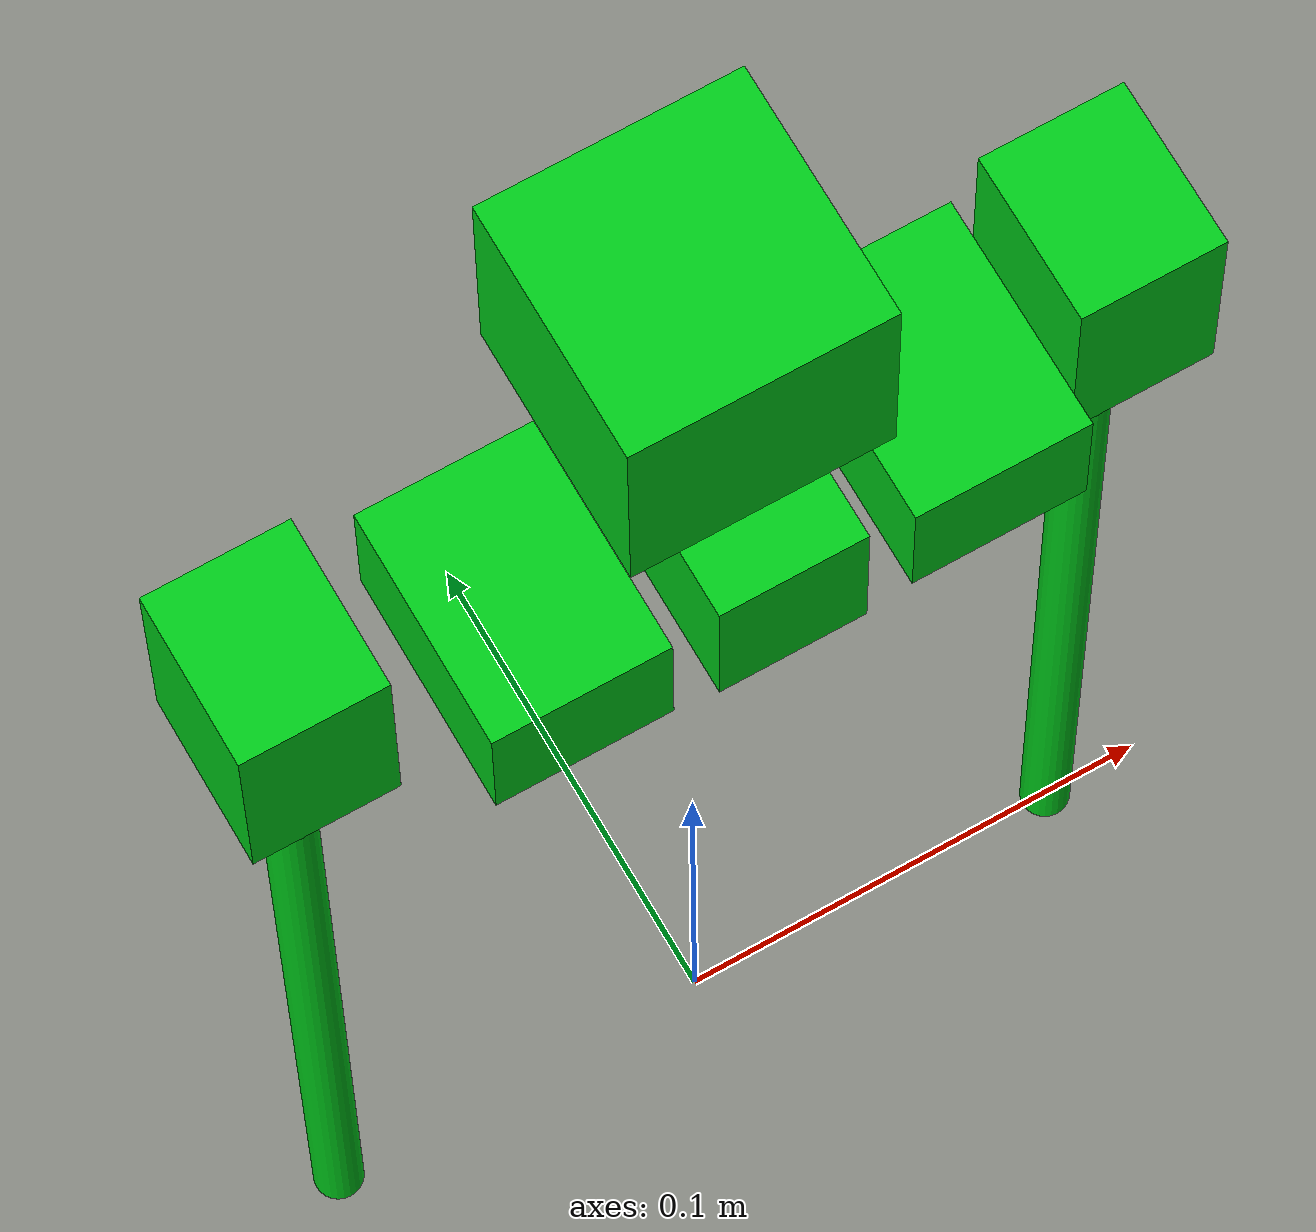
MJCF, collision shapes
<mujoco model="chopstick_bot">
  <default>
    <default class="robot">
      <default class="motor">
        <joint />
        <motor />
        </default>
      <default class="visual">
        <geom material="visualgeom" contype="0" conaffinity="0" group="2" />
        </default>
      <default class="collision">
        <geom material="collision_material" condim="3" contype="0" conaffinity="1" priority="1" group="1" solref="0.005 1" solimp="0.99 0.999 1e-05" friction="1 0.01 0.01" />
        </default>
      </default>
    </default>
  <compiler angle="radian" />
  <asset>
    <material name="motor_gray" rgba="0.89804 0.91765 0.92941 1.0" />
    <material name="default_material" rgba="0.7 0.7 0.7 1" />
    <material name="collision_material" rgba="0.0 0.8 0.1 1.0" />
    <mesh name="XL-430_new_coordinate_on_axis.STL" file="/media/hrc/T7_UBUNTU_ONLY/Codesign_ChopstickBot_all_files/reference/xm430_motor/good_conversion_stl/XL-430_new_coordinate_on_axis.STL" scale="0.001000 0.001000 0.001000" />
    </asset>
  <worldbody>
    <body name="base_motor_link" pos="0.00000000 0.00000000 0.26999999" quat="1 0 0 0" childclass="robot">
      <freejoint name="floating_base" />
      <geom name="base_motor_link_collision" pos="0.000000 -0.012000 0.000000" quat="1.0 0.0 0.0 0.0" type="box" size="0.01425 0.02325 0.017" class="collision" />
      <geom name="base_motor_link_visual" pos="0.000000 0.000000 0.000000" quat="1.0 0.0 0.0 0.0" material="motor_gray" type="mesh" mesh="XL-430_new_coordinate_on_axis.STL" class="visual" />
      <body name="l_hip_pitch_mount" pos="-0.040000 0.000000 0.000000" quat="0.7071068967259818 0.0 -0.7071066656470943 0.0">
        <inertial pos="0.000000 0.000000 0.000000" quat="1.0 0.0 0.0 0.0" mass="0.001000" diaginertia="2e-08 2e-08 2e-08" />
        <body name="l_hip_pitch" pos="0.000000 0.000000 0.000000" quat="1.0 0.0 0.0 0.0">
          <inertial pos="0.000000 -0.012000 0.000000" quat="1.0 0.0 0.0 0.0" mass="0.065000" diaginertia="1.797e-05 1.066e-05 1.611e-05" />
          <geom name="l_hip_pitch_collision" pos="0.000000 -0.012000 0.000000" quat="1.0 0.0 0.0 0.0" type="box" size="0.01425 0.02325 0.017" class="collision" />
          <geom name="l_hip_pitch_visual" pos="0.000000 0.000000 0.000000" quat="1.0 0.0 0.0 0.0" material="motor_gray" type="mesh" mesh="XL-430_new_coordinate_on_axis.STL" class="visual" />
          <body name="l_hip_pitch_joint_frame" pos="0.000000 0.000000 0.040000" quat="1.0 0.0 0.0 0.0">
            <joint name="l_hip_pitch_joint" type="hinge" ref="0.0" class="motor" range="-1.57 1.57" axis="0.000000 0.000000 1.000000" />
            <site name="l_hip_pitch_joint_site" pos="0 0 0" quat="1 0 0 0" />
            <inertial pos="0.000000 0.000000 0.000000" quat="1.0 0.0 0.0 0.0" mass="0.001000" diaginertia="2e-08 2e-08 2e-08" />
            <body name="l_hip_roll" pos="0.000000 0.000000 0.000000" quat="0.5000001633974483 -0.49999983660255165 -0.4999999999999733 -0.4999999999999733">
              <inertial pos="0.000000 -0.012000 0.000000" quat="1.0 0.0 0.0 0.0" mass="0.065000" diaginertia="1.797e-05 1.066e-05 1.611e-05" />
              <geom name="l_hip_roll_collision" pos="0.000000 -0.012000 0.000000" quat="1.0 0.0 0.0 0.0" type="box" size="0.01425 0.02325 0.017" class="collision" />
              <geom name="l_hip_roll_visual" pos="0.000000 0.000000 0.000000" quat="1.0 0.0 0.0 0.0" material="motor_gray" type="mesh" mesh="XL-430_new_coordinate_on_axis.STL" class="visual" />
              <body name="l_leg_bar" pos="0.000000 -0.000000 0.000000" quat="1.0 0.0 0.0 0.0">
                <joint name="l_hip_roll_joint" type="hinge" ref="0.0" class="motor" range="-1.57 1.57" axis="0.000000 0.000000 1.000000" />
                <site name="l_hip_roll_joint_site" pos="0 0 0" quat="1 0 0 0" />
                <inertial pos="0.000000 0.000000 0.000000" quat="1.0 0.0 0.0 0.0" mass="0.030000" diaginertia="0.00010019 0.00010019 3.7e-07" />
                <geom name="l_leg_bar_collision" pos="0.000000 -0.170000 0.000000" quat="0.7071068967259818 0.7071066656470943 0.0 0.0" type="cylinder" size="0.005000 0.1" class="collision" />
                <geom name="l_leg_bar_visual" pos="0.000000 -0.170000 0.000000" quat="0.7071068967259818 0.7071066656470943 0.0 0.0" material="motor_gray" type="cylinder" size="0.005000 0.1" class="visual" />
                </body>
              </body>
            </body>
          </body>
        </body>
      <body name="r_hip_pitch_mount" pos="0.040000 0.000000 0.000000" quat="0.7071068967259818 0.0 0.7071066656470943 -0.0">
        <inertial pos="0.000000 0.000000 0.000000" quat="1.0 0.0 0.0 0.0" mass="0.001000" diaginertia="2e-08 2e-08 2e-08" />
        <body name="r_hip_pitch" pos="0.000000 0.000000 0.000000" quat="1.0 0.0 0.0 0.0">
          <inertial pos="0.000000 -0.012000 0.000000" quat="1.0 0.0 0.0 0.0" mass="0.065000" diaginertia="1.797e-05 1.066e-05 1.611e-05" />
          <geom name="r_hip_pitch_collision" pos="0.000000 -0.012000 0.000000" quat="1.0 0.0 0.0 0.0" type="box" size="0.01425 0.02325 0.017" class="collision" />
          <geom name="r_hip_pitch_visual" pos="0.000000 0.000000 0.000000" quat="1.0 0.0 0.0 0.0" material="motor_gray" type="mesh" mesh="XL-430_new_coordinate_on_axis.STL" class="visual" />
          <body name="r_hip_pitch_joint_frame" pos="-0.000000 0.000000 0.040000" quat="1.0 0.0 0.0 0.0">
            <joint name="r_hip_pitch_joint" type="hinge" ref="0.0" class="motor" range="-1.57 1.57" axis="0.000000 0.000000 1.000000" />
            <site name="r_hip_pitch_joint_site" pos="0 0 0" quat="1 0 0 0" />
            <inertial pos="0.000000 0.000000 0.000000" quat="1.0 0.0 0.0 0.0" mass="0.001000" diaginertia="2e-08 2e-08 2e-08" />
            <body name="r_hip_roll" pos="0.000000 0.000000 0.000000" quat="0.5000001633974483 -0.49999983660255165 0.4999999999999733 0.4999999999999733">
              <inertial pos="0.000000 -0.012000 0.000000" quat="1.0 0.0 0.0 0.0" mass="0.065000" diaginertia="1.797e-05 1.066e-05 1.611e-05" />
              <geom name="r_hip_roll_collision" pos="0.000000 -0.012000 0.000000" quat="1.0 0.0 0.0 0.0" type="box" size="0.01425 0.02325 0.017" class="collision" />
              <geom name="r_hip_roll_visual" pos="0.000000 0.000000 0.000000" quat="1.0 0.0 0.0 0.0" material="motor_gray" type="mesh" mesh="XL-430_new_coordinate_on_axis.STL" class="visual" />
              <body name="r_leg_bar" pos="-0.000000 -0.000000 0.000000" quat="1.0 0.0 0.0 0.0">
                <joint name="r_hip_roll_joint" type="hinge" ref="0.0" class="motor" range="-1.57 1.57" axis="0.000000 0.000000 1.000000" />
                <site name="r_hip_roll_joint_site" pos="0 0 0" quat="1 0 0 0" />
                <inertial pos="0.000000 0.000000 0.000000" quat="1.0 0.0 0.0 0.0" mass="0.030000" diaginertia="0.00010019 0.00010019 3.7e-07" />
                <geom name="r_leg_bar_collision" pos="-0.000000 -0.170000 0.000000" quat="0.7071068967259818 0.7071066656470943 0.0 0.0" type="cylinder" size="0.005000 0.1" class="collision" />
                <geom name="r_leg_bar_visual" pos="-0.000000 -0.170000 0.000000" quat="0.7071068967259818 0.7071066656470943 0.0 0.0" material="motor_gray" type="cylinder" size="0.005000 0.1" class="visual" />
                </body>
              </body>
            </body>
          </body>
        </body>
      <body name="trunk_link" pos="0.000000 0.000000 0.050000" quat="1.0 0.0 0.0 0.0">
        <joint name="base_to_trunk" type="hinge" ref="0.0" class="motor" range="-3.14159 3.14159" axis="0.000000 0.000000 1.000000" />
        <site name="base_to_trunk_site" pos="0 0 0" quat="1 0 0 0" />
        <inertial pos="0.000000 0.000000 0.000000" quat="1.0 0.0 0.0 0.0" mass="0.200000" diaginertia="8.333e-05 8.333e-05 8.333e-05" />
        <geom name="trunk_link_collision" pos="0.000000 0.000000 0.000000" quat="1.0 0.0 0.0 0.0" type="box" size="0.025 0.025 0.025" class="collision" />
        <geom name="trunk_link_visual" pos="0.000000 0.000000 0.000000" quat="1.0 0.0 0.0 0.0" material="motor_gray" type="box" size="0.025 0.025 0.025" class="visual" />
        </body>
      <site name="base_motor_link_site" pos="0 0 0" quat="1 0 0 0" />
      <camera name="front_camera" mode="track" fovy="90.0" quat="4.329780281177467e-17 4.329780281177466e-17 0.7071067811865475 0.7071067811865476" pos="0.0 2.0 0.5" />
      <camera name="side_camera" mode="track" fovy="90.0" quat="-0.5 -0.4999999999999999 0.5 0.5000000000000001" pos="-2.0 0.0 0.5" />
      </body>
    </worldbody>
  <actuator>
    <motor name="l_hip_pitch_joint_ctrl" joint="l_hip_pitch_joint" class="motor" />
    <motor name="l_hip_roll_joint_ctrl" joint="l_hip_roll_joint" class="motor" />
    <motor name="r_hip_pitch_joint_ctrl" joint="r_hip_pitch_joint" class="motor" />
    <motor name="r_hip_roll_joint_ctrl" joint="r_hip_roll_joint" class="motor" />
    <motor name="base_to_trunk_ctrl" joint="base_to_trunk" class="motor" />
    </actuator>
  <contact>
    <exclude body1="l_hip_roll" body2="l_leg_bar" />
    <exclude body1="r_hip_roll" body2="r_leg_bar" />
    <exclude body1="base_motor_link" body2="trunk_link" />
    </contact>
  <sensor>
    <framepos name="l_hip_pitch_joint_site_pos" objtype="site" objname="l_hip_pitch_joint_site" />
    <framequat name="l_hip_pitch_joint_site_quat" objtype="site" objname="l_hip_pitch_joint_site" />
    <framelinvel name="l_hip_pitch_joint_site_linvel" objtype="site" objname="l_hip_pitch_joint_site" />
    <frameangvel name="l_hip_pitch_joint_site_angvel" objtype="site" objname="l_hip_pitch_joint_site" />
    <velocimeter name="l_hip_pitch_joint_site_vel" site="l_hip_pitch_joint_site" />
    </sensor>
  </mujoco>
